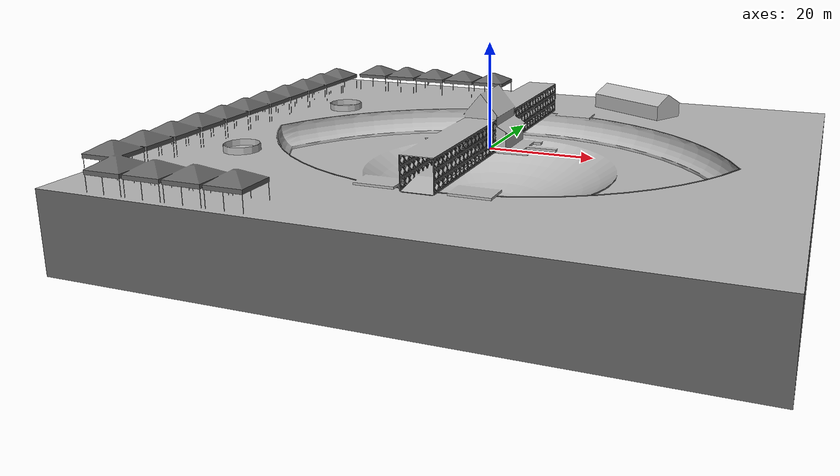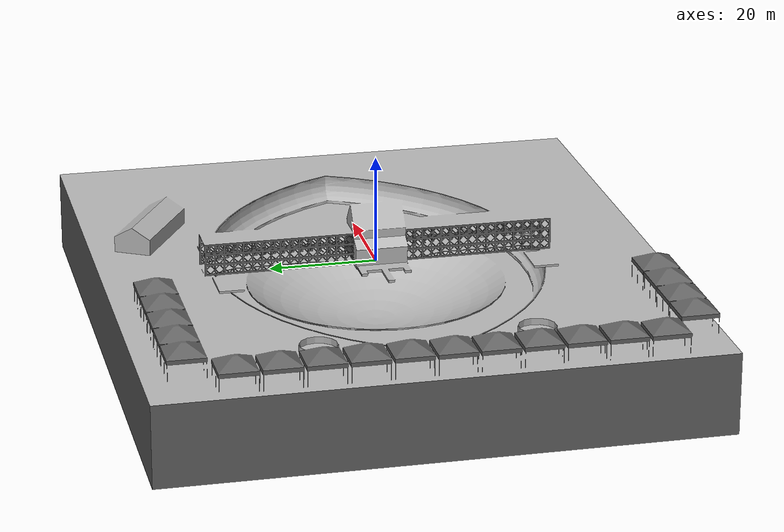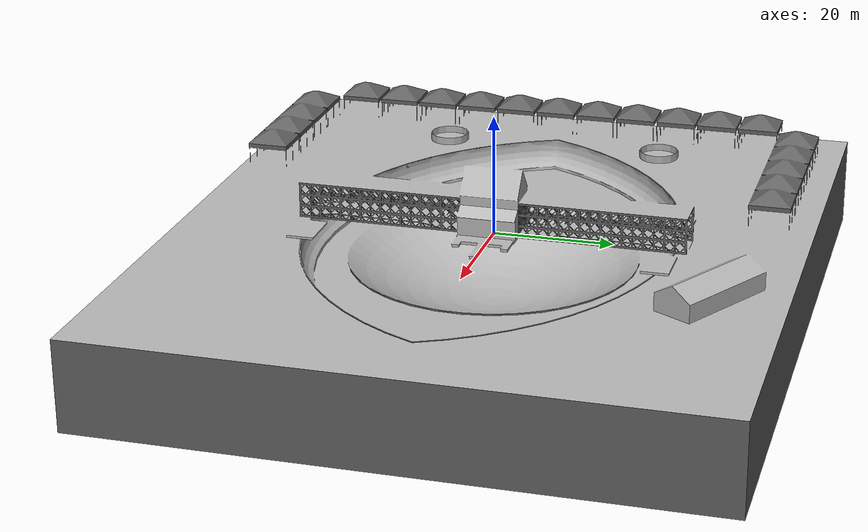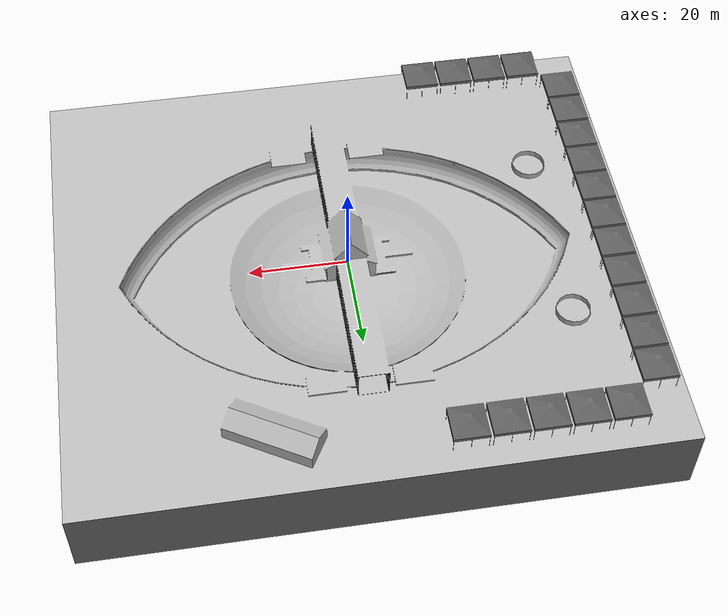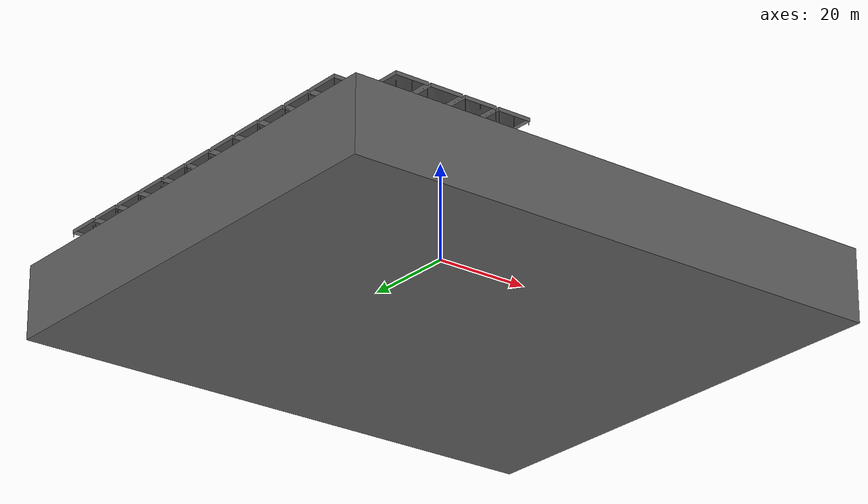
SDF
<?xml version="1.0" ?>
<sdf version="1.5">
  <model name="transdec">
    <static>true</static>
    <link name="base_link">

      <collision name="collision">
        <pose>0 0 -11.5 0 0 0</pose>
        <geometry>
          <mesh>
            <uri>model://transdec/meshes/transdec.dae</uri>
          </mesh>
        </geometry>
      </collision>

      <visual name="visual">
        <cast_shadows>true</cast_shadows>
        <pose>0 0 -11.5 0 0 0</pose>
        <geometry>
          <mesh>
            <uri>model://transdec/meshes/transdec.dae</uri>
          </mesh>
        </geometry>
      </visual>
    </link>
  </model>
</sdf>
